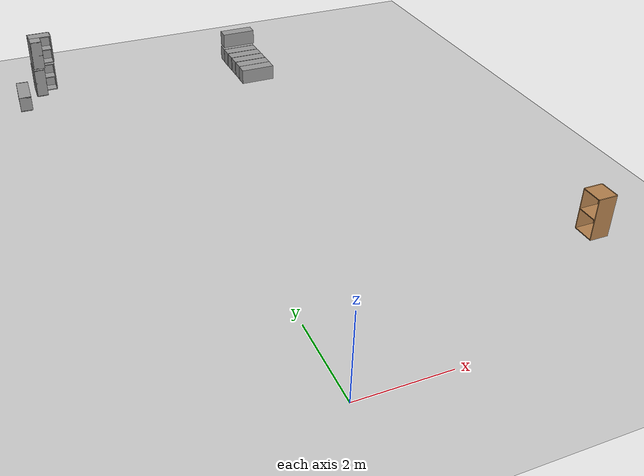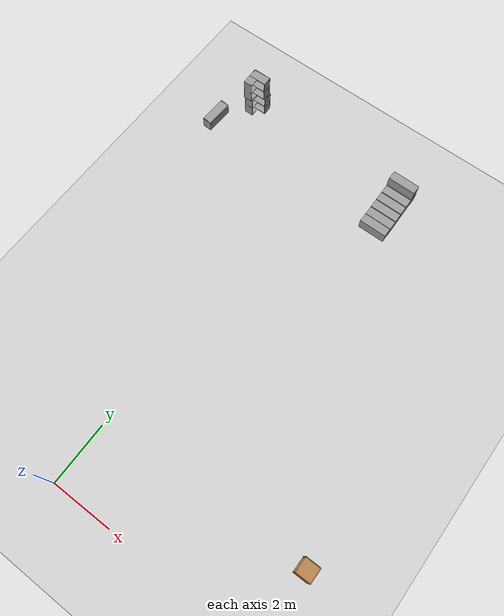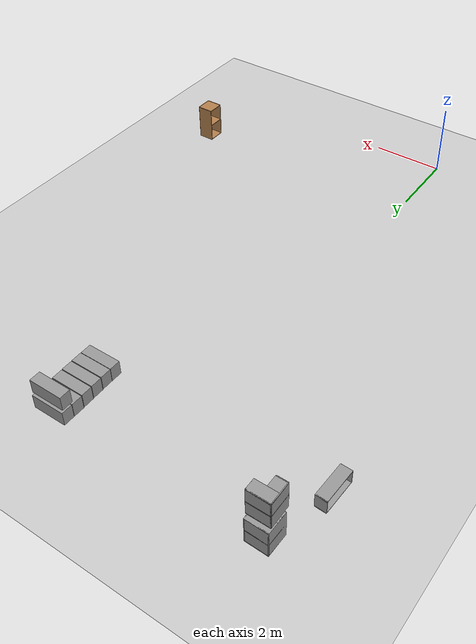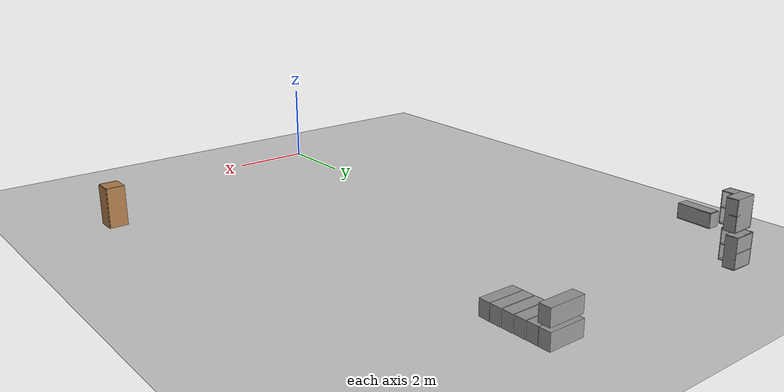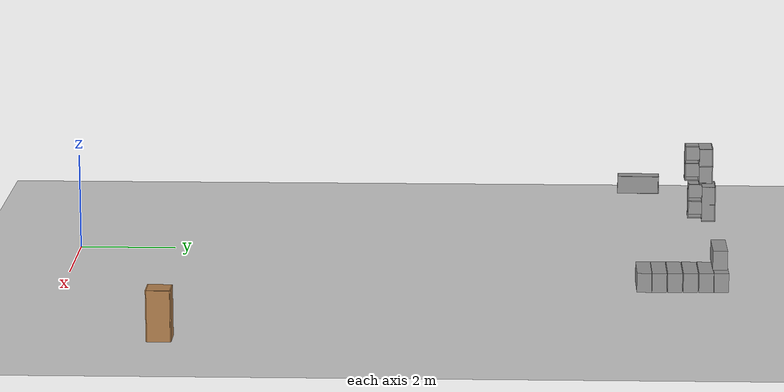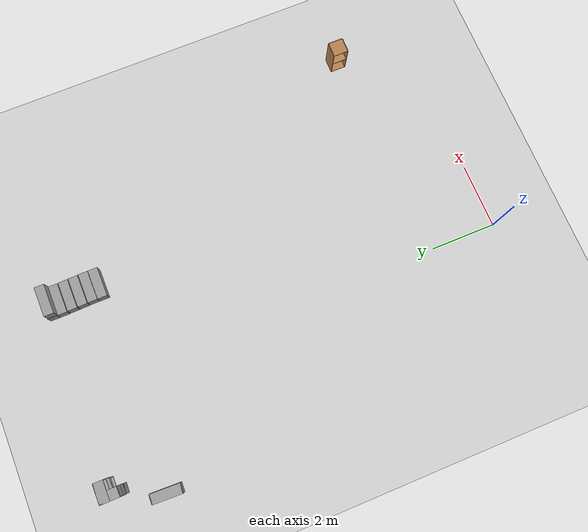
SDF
<sdf version="1.6">
 <world name="default">
  <model name="Box_36x15W">
   <link name="Wall">
    <pose>0 0 0.1985 0 -0 0</pose>
    <inertial>
     <mass>5</mass>
     <inertia><ixx>0.1022</ixx><iyy>0.4107</iyy><izz>0.3815</izz><ixy>0</ixy><ixz>0</ixz><iyz>0</iyz></inertia>
    </inertial>
    <collision name="Wall_Collision"><geometry><box><size>0.91 0.296 0.397</size></box></geometry></collision>
    <visual name="Wall_Visual">
     <geometry><box><size>0.91 0.296 0.397</size></box></geometry>
     <material>
      <script><uri>file://media/materials/scripts/gazebo.material</uri><name>Gazebo/Grey</name></script>
      <ambient>1 1 1 1</ambient>
     </material>
    </visual>
   </link>
   <static>1</static>
   <pose>2.73505 13.3468 0 0 -0 0</pose>
  </model>
  <model name="Box_36x15W_0">
   <link name="Wall">
    <pose>0 0 0.1985 0 -0 0</pose>
    <inertial>
     <mass>5</mass>
     <inertia><ixx>0.1022</ixx><iyy>0.4107</iyy><izz>0.3815</izz><ixy>0</ixy><ixz>0</ixz><iyz>0</iyz></inertia>
    </inertial>
    <collision name="Wall_Collision"><geometry><box><size>0.91 0.296 0.397</size></box></geometry></collision>
    <visual name="Wall_Visual">
     <geometry><box><size>0.91 0.296 0.397</size></box></geometry>
     <material>
      <script><uri>file://media/materials/scripts/gazebo.material</uri><name>Gazebo/Grey</name></script>
      <ambient>1 1 1 1</ambient>
     </material>
    </visual>
   </link>
   <static>1</static>
   <pose>2.73379 13.0426 0 0 -0 0</pose>
  </model>
  <model name="Box_36x15W_1">
   <link name="Wall">
    <pose>0 0 0.1985 0 -0 0</pose>
    <inertial>
     <mass>5</mass>
     <inertia><ixx>0.1022</ixx><iyy>0.4107</iyy><izz>0.3815</izz><ixy>0</ixy><ixz>0</ixz><iyz>0</iyz></inertia>
    </inertial>
    <collision name="Wall_Collision"><geometry><box><size>0.91 0.296 0.397</size></box></geometry></collision>
    <visual name="Wall_Visual">
     <geometry><box><size>0.91 0.296 0.397</size></box></geometry>
     <material>
      <script><uri>file://media/materials/scripts/gazebo.material</uri><name>Gazebo/Grey</name></script>
      <ambient>1 1 1 1</ambient>
     </material>
    </visual>
   </link>
   <static>1</static>
   <pose>2.74071 12.727 0 0 -0 0</pose>
  </model>
  <model name="Box_36x15W_2">
   <link name="Wall">
    <pose>0 0 0.1985 0 -0 0</pose>
    <inertial>
     <mass>5</mass>
     <inertia><ixx>0.1022</ixx><iyy>0.4107</iyy><izz>0.3815</izz><ixy>0</ixy><ixz>0</ixz><iyz>0</iyz></inertia>
    </inertial>
    <collision name="Wall_Collision"><geometry><box><size>0.91 0.296 0.397</size></box></geometry></collision>
    <visual name="Wall_Visual">
     <geometry><box><size>0.91 0.296 0.397</size></box></geometry>
     <material>
      <script><uri>file://media/materials/scripts/gazebo.material</uri><name>Gazebo/Grey</name></script>
      <ambient>1 1 1 1</ambient>
     </material>
    </visual>
   </link>
   <static>1</static>
   <pose>2.74763 12.4113 0 0 -0 0</pose>
  </model>
  <model name="Box_36x15W_3">
   <link name="Wall">
    <pose>0 0 0.1985 0 -0 0</pose>
    <inertial>
     <mass>5</mass>
     <inertia><ixx>0.1022</ixx><iyy>0.4107</iyy><izz>0.3815</izz><ixy>0</ixy><ixz>0</ixz><iyz>0</iyz></inertia>
    </inertial>
    <collision name="Wall_Collision"><geometry><box><size>0.91 0.296 0.397</size></box></geometry></collision>
    <visual name="Wall_Visual">
     <geometry><box><size>0.91 0.296 0.397</size></box></geometry>
     <material>
      <script><uri>file://media/materials/scripts/gazebo.material</uri><name>Gazebo/Grey</name></script>
      <ambient>1 1 1 1</ambient>
     </material>
    </visual>
   </link>
   <static>1</static>
   <pose>2.75455 12.0956 0 0 -0 0</pose>
  </model>
  <model name="Box_36x15W_4">
   <link name="Wall">
    <pose>0 0 0.1985 0 -0 0</pose>
    <inertial>
     <mass>5</mass>
     <inertia><ixx>0.1022</ixx><iyy>0.4107</iyy><izz>0.3815</izz><ixy>0</ixy><ixz>0</ixz><iyz>0</iyz></inertia>
    </inertial>
    <collision name="Wall_Collision"><geometry><box><size>0.91 0.296 0.397</size></box></geometry></collision>
    <visual name="Wall_Visual">
     <geometry><box><size>0.91 0.296 0.397</size></box></geometry>
     <material>
      <script><uri>file://media/materials/scripts/gazebo.material</uri><name>Gazebo/Grey</name></script>
      <ambient>1 1 1 1</ambient>
     </material>
    </visual>
   </link>
   <static>1</static>
   <pose>2.75329 11.7915 0 0 -0 0</pose>
  </model>
  <model name="Box_36x15W_5">
   <link name="Wall">
    <pose>0 0 0.1985 0 -0 0</pose>
    <inertial>
     <mass>5</mass>
     <inertia><ixx>0.1022</ixx><iyy>0.4107</iyy><izz>0.3815</izz><ixy>0</ixy><ixz>0</ixz><iyz>0</iyz></inertia>
    </inertial>
    <collision name="Wall_Collision"><geometry><box><size>0.91 0.296 0.397</size></box></geometry></collision>
    <visual name="Wall_Visual">
     <geometry><box><size>0.91 0.296 0.397</size></box></geometry>
     <material>
      <script><uri>file://media/materials/scripts/gazebo.material</uri><name>Gazebo/Grey</name></script>
      <ambient>1 1 1 1</ambient>
     </material>
    </visual>
   </link>
   <static>1</static>
   <pose>2.73178 13.3121 0.471526 0 -0 0</pose>
  </model>
  <model name="Wall_Cabinet_Coin_24x30W">
   <link name="Wall_10">
    <pose>0.286 -0.148 0.384 0 -0 0</pose>
    <inertial>
     <mass>2.1259</mass>
     <inertia><ixx>0.0158</ixx><iyy>0.1202</iyy><izz>0.1046</izz><ixy>0</ixy><ixz>0</ixz><iyz>0</iyz></inertia>
    </inertial>
    <collision name="Wall_10_Collision"><geometry><box><size>0.02 0.296 0.768</size></box></geometry></collision>
    <visual name="Wall_10_Visual">
     <geometry><box><size>0.02 0.296 0.768</size></box></geometry>
     <material>
      <script><uri>file://media/materials/scripts/gazebo.material</uri><name>Gazebo/Grey</name></script>
      <ambient>1 1 1 1</ambient>
     </material>
    </visual>
   </link>
   <joint name="10_16" type="fixed">
    <pose>0 0 -0.374 0 -0 0</pose>
    <parent>Wall_16</parent>
    <child>Wall_10</child>
    <axis>
     <xyz>1 0 0</xyz>
     <use_parent_model_frame>0</use_parent_model_frame>
     <limit><lower>-1e+16</lower><upper>1e+16</upper></limit>
    </axis>
   </joint>
   <joint name="10_14" type="fixed">
    <parent>Wall_14</parent>
    <child>Wall_10</child>
    <axis>
     <xyz>1 0 0</xyz>
     <use_parent_model_frame>0</use_parent_model_frame>
     <limit><lower>-1e+16</lower><upper>1e+16</upper></limit>
    </axis>
   </joint>
   <joint name="10_12" type="fixed">
    <pose>0 0 0.374 0 -0 0</pose>
    <parent>Wall_12</parent>
    <child>Wall_10</child>
    <axis>
     <xyz>1 0 0</xyz>
     <use_parent_model_frame>0</use_parent_model_frame>
     <limit><lower>-1e+16</lower><upper>1e+16</upper></limit>
    </axis>
   </joint>
   <joint name="10_29" type="fixed">
    <pose>0 -0.148 0 0 -0 0</pose>
    <parent>Wall_29</parent>
    <child>Wall_10</child>
    <axis>
     <xyz>1 0 0</xyz>
     <use_parent_model_frame>0</use_parent_model_frame>
     <limit><lower>-1e+16</lower><upper>1e+16</upper></limit>
    </axis>
   </joint>
   <link name="Wall_12">
    <pose>0.148 -0.148 0.758 0 -0 0</pose>
    <inertial>
     <mass>0.8802</mass>
     <inertia><ixx>0.0065</ixx><iyy>0.0139</iyy><izz>0.0074</izz><ixy>0</ixy><ixz>0</ixz><iyz>0</iyz></inertia>
    </inertial>
    <collision name="Wall_12_Collision"><geometry><box><size>0.296 0.296 0.02</size></box></geometry></collision>
    <visual name="Wall_12_Visual">
     <geometry><box><size>0.296 0.296 0.02</size></box></geometry>
     <material>
      <script><uri>file://media/materials/scripts/gazebo.material</uri><name>Gazebo/Grey</name></script>
      <ambient>1 1 1 1</ambient>
     </material>
    </visual>
   </link>
   <joint name="12_29" type="fixed">
    <pose>0 -0.148 0 0 -0 0</pose>
    <parent>Wall_29</parent>
    <child>Wall_12</child>
    <axis>
     <xyz>0 0 1</xyz>
     <use_parent_model_frame>0</use_parent_model_frame>
     <limit><lower>-1e+16</lower><upper>1e+16</upper></limit>
    </axis>
   </joint>
   <link name="Wall_14">
    <pose>0.148 -0.148 0.384 0 -0 0</pose>
    <inertial>
     <mass>0.8802</mass>
     <inertia><ixx>0.0065</ixx><iyy>0.0139</iyy><izz>0.0074</izz><ixy>0</ixy><ixz>0</ixz><iyz>0</iyz></inertia>
    </inertial>
    <collision name="Wall_14_Collision"><geometry><box><size>0.296 0.296 0.02</size></box></geometry></collision>
    <visual name="Wall_14_Visual">
     <geometry><box><size>0.296 0.296 0.02</size></box></geometry>
     <material>
      <script><uri>file://media/materials/scripts/gazebo.material</uri><name>Gazebo/Grey</name></script>
      <ambient>1 1 1 1</ambient>
     </material>
    </visual>
   </link>
   <joint name="14_29" type="fixed">
    <pose>0 -0.148 0 0 -0 0</pose>
    <parent>Wall_29</parent>
    <child>Wall_14</child>
    <axis>
     <xyz>0 1 0</xyz>
     <use_parent_model_frame>0</use_parent_model_frame>
     <limit><lower>-1e+16</lower><upper>1e+16</upper></limit>
    </axis>
   </joint>
   <link name="Wall_16">
    <pose>0.148 -0.148 0.01 0 -0 0</pose>
    <inertial>
     <mass>0.8802</mass>
     <inertia><ixx>0.0065</ixx><iyy>0.0139</iyy><izz>0.0074</izz><ixy>0</ixy><ixz>0</ixz><iyz>0</iyz></inertia>
    </inertial>
    <collision name="Wall_16_Collision"><geometry><box><size>0.296 0.296 0.02</size></box></geometry></collision>
    <visual name="Wall_16_Visual">
     <geometry><box><size>0.296 0.296 0.02</size></box></geometry>
     <material>
      <script><uri>file://media/materials/scripts/gazebo.material</uri><name>Gazebo/Grey</name></script>
      <ambient>1 1 1 1</ambient>
     </material>
    </visual>
   </link>
   <joint name="16_29" type="fixed">
    <pose>0 -0.148 0 0 -0 0</pose>
    <parent>Wall_29</parent>
    <child>Wall_16</child>
    <axis>
     <xyz>0 1 0</xyz>
     <use_parent_model_frame>0</use_parent_model_frame>
     <limit><lower>-1e+16</lower><upper>1e+16</upper></limit>
    </axis>
   </joint>
   <link name="Wall_18">
    <pose>-0.148 0 0.01 0 -0 0</pose>
    <inertial>
     <mass>1.6525</mass>
     <inertia><ixx>0.0491</ixx><iyy>0.0613</iyy><izz>0.0123</izz><ixy>0</ixy><ixz>0</ixz><iyz>0</iyz></inertia>
    </inertial>
    <collision name="Wall_18_Collision"><geometry><box><size>0.296 0.592 0.02</size></box></geometry></collision>
    <visual name="Wall_18_Visual">
     <geometry><box><size>0.296 0.592 0.02</size></box></geometry>
     <material>
      <script><uri>file://media/materials/scripts/gazebo.material</uri><name>Gazebo/Grey</name></script>
      <ambient>1 1 1 1</ambient>
     </material>
    </visual>
   </link>
   <joint name="18_16" type="fixed">
    <pose>0.148 -0.148 0 0 -0 0</pose>
    <parent>Wall_16</parent>
    <child>Wall_18</child>
    <axis>
     <xyz>1 0 0</xyz>
     <use_parent_model_frame>0</use_parent_model_frame>
     <limit><lower>-1e+16</lower><upper>1e+16</upper></limit>
    </axis>
   </joint>
   <joint name="18_29" type="fixed">
    <pose>0 -0.296 0 0 -0 0</pose>
    <parent>Wall_29</parent>
    <child>Wall_18</child>
    <axis>
     <xyz>0 1 0</xyz>
     <use_parent_model_frame>0</use_parent_model_frame>
     <limit><lower>-1e+16</lower><upper>1e+16</upper></limit>
    </axis>
   </joint>
   <joint name="18_27" type="fixed">
    <pose>-0.148 0 0 0 -0 0</pose>
    <parent>Wall_27</parent>
    <child>Wall_18</child>
    <axis>
     <xyz>1 0 0</xyz>
     <use_parent_model_frame>0</use_parent_model_frame>
     <limit><lower>-1e+16</lower><upper>1e+16</upper></limit>
    </axis>
   </joint>
   <joint name="18_30" type="fixed">
    <pose>0 0.296 0 0 -0 0</pose>
    <parent>Wall_30</parent>
    <child>Wall_18</child>
    <axis>
     <xyz>0 1 0</xyz>
     <use_parent_model_frame>0</use_parent_model_frame>
     <limit><lower>-1e+16</lower><upper>1e+16</upper></limit>
    </axis>
   </joint>
   <link name="Wall_20">
    <pose>-0.148 0 0.384 0 -0 0</pose>
    <inertial>
     <mass>1.6525</mass>
     <inertia><ixx>0.0491</ixx><iyy>0.0613</iyy><izz>0.0123</izz><ixy>0</ixy><ixz>0</ixz><iyz>0</iyz></inertia>
    </inertial>
    <collision name="Wall_20_Collision"><geometry><box><size>0.296 0.592 0.02</size></box></geometry></collision>
    <visual name="Wall_20_Visual">
     <geometry><box><size>0.296 0.592 0.02</size></box></geometry>
     <material>
      <script><uri>file://media/materials/scripts/gazebo.material</uri><name>Gazebo/Grey</name></script>
      <ambient>1 1 1 1</ambient>
     </material>
    </visual>
   </link>
   <joint name="20_14" type="fixed">
    <pose>0.148 -0.148 0 0 -0 0</pose>
    <parent>Wall_14</parent>
    <child>Wall_20</child>
    <axis>
     <xyz>1 0 0</xyz>
     <use_parent_model_frame>0</use_parent_model_frame>
     <limit><lower>-1e+16</lower><upper>1e+16</upper></limit>
    </axis>
   </joint>
   <joint name="20_29" type="fixed">
    <pose>0 -0.296 0 0 -0 0</pose>
    <parent>Wall_29</parent>
    <child>Wall_20</child>
    <axis>
     <xyz>0 1 0</xyz>
     <use_parent_model_frame>0</use_parent_model_frame>
     <limit><lower>-1e+16</lower><upper>1e+16</upper></limit>
    </axis>
   </joint>
   <joint name="20_27" type="fixed">
    <pose>-0.148 0 0 0 -0 0</pose>
    <parent>Wall_27</parent>
    <child>Wall_20</child>
    <axis>
     <xyz>1 0 0</xyz>
     <use_parent_model_frame>0</use_parent_model_frame>
     <limit><lower>-1e+16</lower><upper>1e+16</upper></limit>
    </axis>
   </joint>
   <joint name="20_30" type="fixed">
    <pose>0 0.296 0 0 -0 0</pose>
    <parent>Wall_30</parent>
    <child>Wall_20</child>
    <axis>
     <xyz>0 1 0</xyz>
     <use_parent_model_frame>0</use_parent_model_frame>
     <limit><lower>-1e+16</lower><upper>1e+16</upper></limit>
    </axis>
   </joint>
   <link name="Wall_22">
    <pose>-0.148 0 0.758 0 -0 0</pose>
    <inertial>
     <mass>1.6525</mass>
     <inertia><ixx>0.0491</ixx><iyy>0.0613</iyy><izz>0.0123</izz><ixy>0</ixy><ixz>0</ixz><iyz>0</iyz></inertia>
    </inertial>
    <collision name="Wall_22_Collision"><geometry><box><size>0.296 0.592 0.02</size></box></geometry></collision>
    <visual name="Wall_22_Visual">
     <geometry><box><size>0.296 0.592 0.02</size></box></geometry>
     <material>
      <script><uri>file://media/materials/scripts/gazebo.material</uri><name>Gazebo/Grey</name></script>
      <ambient>1 1 1 1</ambient>
     </material>
    </visual>
   </link>
   <joint name="22_12" type="fixed">
    <pose>0.148 -0.148 0 0 -0 0</pose>
    <parent>Wall_12</parent>
    <child>Wall_22</child>
    <axis>
     <xyz>1 0 0</xyz>
     <use_parent_model_frame>0</use_parent_model_frame>
     <limit><lower>-1e+16</lower><upper>1e+16</upper></limit>
    </axis>
   </joint>
   <joint name="22_29" type="fixed">
    <pose>0 -0.296 0 0 -0 0</pose>
    <parent>Wall_29</parent>
    <child>Wall_22</child>
    <axis>
     <xyz>0 1 0</xyz>
     <use_parent_model_frame>0</use_parent_model_frame>
     <limit><lower>-1e+16</lower><upper>1e+16</upper></limit>
    </axis>
   </joint>
   <joint name="22_27" type="fixed">
    <pose>-0.148 0 0 0 -0 0</pose>
    <parent>Wall_27</parent>
    <child>Wall_22</child>
    <axis>
     <xyz>1 0 0</xyz>
     <use_parent_model_frame>0</use_parent_model_frame>
     <limit><lower>-1e+16</lower><upper>1e+16</upper></limit>
    </axis>
   </joint>
   <joint name="22_30" type="fixed">
    <pose>0 0.296 0 0 -0 0</pose>
    <parent>Wall_30</parent>
    <child>Wall_22</child>
    <axis>
     <xyz>0 1 0</xyz>
     <use_parent_model_frame>0</use_parent_model_frame>
     <limit><lower>-1e+16</lower><upper>1e+16</upper></limit>
    </axis>
   </joint>
   <link name="Wall_27">
    <pose>-0.286 0 0.384 0 -0 0</pose>
    <inertial>
     <mass>4.2589</mass>
     <inertia><ixx>0.1266</ixx><iyy>0.3358</iyy><izz>0.2095</izz><ixy>0</ixy><ixz>0</ixz><iyz>0</iyz></inertia>
    </inertial>
    <collision name="Wall_27_Collision"><geometry><box><size>0.02 0.592 0.768</size></box></geometry></collision>
    <visual name="Wall_27_Visual">
     <geometry><box><size>0.02 0.592 0.768</size></box></geometry>
     <material>
      <script><uri>file://media/materials/scripts/gazebo.material</uri><name>Gazebo/Grey</name></script>
      <ambient>1 1 1 1</ambient>
     </material>
    </visual>
   </link>
   <joint name="27_30" type="fixed">
    <pose>0 0.296 0 0 -0 0</pose>
    <parent>Wall_30</parent>
    <child>Wall_27</child>
    <axis>
     <xyz>0 1 0</xyz>
     <use_parent_model_frame>0</use_parent_model_frame>
     <limit><lower>-1e+16</lower><upper>1e+16</upper></limit>
    </axis>
   </joint>
   <link name="Wall_29">
    <pose>0 -0.286 0.384 0 -0 0</pose>
    <inertial>
     <mass>4.3176</mass>
     <inertia><ixx>0.134</ixx><iyy>0.2091</iyy><izz>0.3428</izz><ixy>0</ixy><ixz>0</ixz><iyz>0</iyz></inertia>
    </inertial>
    <collision name="Wall_29_Collision"><geometry><box><size>0.592 0.02 0.768</size></box></geometry></collision>
    <visual name="Wall_29_Visual">
     <geometry><box><size>0.592 0.02 0.768</size></box></geometry>
     <material>
      <script><uri>file://media/materials/scripts/gazebo.material</uri><name>Gazebo/Grey</name></script>
      <ambient>1 1 1 1</ambient>
     </material>
    </visual>
   </link>
   <link name="Wall_30">
    <pose>-0.148 0.286 0.384 0 -0 0</pose>
    <inertial>
     <mass>2.1093</mass>
     <inertia><ixx>0.1021</ixx><iyy>0.0157</iyy><izz>0.1177</izz><ixy>0</ixy><ixz>0</ixz><iyz>0</iyz></inertia>
    </inertial>
    <collision name="Wall_30_Collision"><geometry><box><size>0.296 0.02 0.768</size></box></geometry></collision>
    <visual name="Wall_30_Visual">
     <geometry><box><size>0.296 0.02 0.768</size></box></geometry>
     <material>
      <script><uri>file://media/materials/scripts/gazebo.material</uri><name>Gazebo/Grey</name></script>
      <ambient>1 1 1 1</ambient>
     </material>
    </visual>
   </link>
   <static>1</static>
   <pose>-2.88429 13.1884 0.84864 0 0 -1.56746</pose>
  </model>
  <model name="Wall_Cabinet_Coin_24x30W_0">
   <link name="Wall_10">
    <pose>0.286 -0.148 0.384 0 -0 0</pose>
    <inertial>
     <mass>2.1259</mass>
     <inertia><ixx>0.0158</ixx><iyy>0.1202</iyy><izz>0.1046</izz><ixy>0</ixy><ixz>0</ixz><iyz>0</iyz></inertia>
    </inertial>
    <collision name="Wall_10_Collision"><geometry><box><size>0.02 0.296 0.768</size></box></geometry></collision>
    <visual name="Wall_10_Visual">
     <geometry><box><size>0.02 0.296 0.768</size></box></geometry>
     <material>
      <script><uri>file://media/materials/scripts/gazebo.material</uri><name>Gazebo/Grey</name></script>
      <ambient>1 1 1 1</ambient>
     </material>
    </visual>
   </link>
   <joint name="10_16" type="fixed">
    <pose>0 0 -0.374 0 -0 0</pose>
    <parent>Wall_16</parent>
    <child>Wall_10</child>
    <axis>
     <xyz>1 0 0</xyz>
     <use_parent_model_frame>0</use_parent_model_frame>
     <limit><lower>-1e+16</lower><upper>1e+16</upper></limit>
    </axis>
   </joint>
   <joint name="10_14" type="fixed">
    <parent>Wall_14</parent>
    <child>Wall_10</child>
    <axis>
     <xyz>1 0 0</xyz>
     <use_parent_model_frame>0</use_parent_model_frame>
     <limit><lower>-1e+16</lower><upper>1e+16</upper></limit>
    </axis>
   </joint>
   <joint name="10_12" type="fixed">
    <pose>0 0 0.374 0 -0 0</pose>
    <parent>Wall_12</parent>
    <child>Wall_10</child>
    <axis>
     <xyz>1 0 0</xyz>
     <use_parent_model_frame>0</use_parent_model_frame>
     <limit><lower>-1e+16</lower><upper>1e+16</upper></limit>
    </axis>
   </joint>
   <joint name="10_29" type="fixed">
    <pose>0 -0.148 0 0 -0 0</pose>
    <parent>Wall_29</parent>
    <child>Wall_10</child>
    <axis>
     <xyz>1 0 0</xyz>
     <use_parent_model_frame>0</use_parent_model_frame>
     <limit><lower>-1e+16</lower><upper>1e+16</upper></limit>
    </axis>
   </joint>
   <link name="Wall_12">
    <pose>0.148 -0.148 0.758 0 -0 0</pose>
    <inertial>
     <mass>0.8802</mass>
     <inertia><ixx>0.0065</ixx><iyy>0.0139</iyy><izz>0.0074</izz><ixy>0</ixy><ixz>0</ixz><iyz>0</iyz></inertia>
    </inertial>
    <collision name="Wall_12_Collision"><geometry><box><size>0.296 0.296 0.02</size></box></geometry></collision>
    <visual name="Wall_12_Visual">
     <geometry><box><size>0.296 0.296 0.02</size></box></geometry>
     <material>
      <script><uri>file://media/materials/scripts/gazebo.material</uri><name>Gazebo/Grey</name></script>
      <ambient>1 1 1 1</ambient>
     </material>
    </visual>
   </link>
   <joint name="12_29" type="fixed">
    <pose>0 -0.148 0 0 -0 0</pose>
    <parent>Wall_29</parent>
    <child>Wall_12</child>
    <axis>
     <xyz>0 0 1</xyz>
     <use_parent_model_frame>0</use_parent_model_frame>
     <limit><lower>-1e+16</lower><upper>1e+16</upper></limit>
    </axis>
   </joint>
   <link name="Wall_14">
    <pose>0.148 -0.148 0.384 0 -0 0</pose>
    <inertial>
     <mass>0.8802</mass>
     <inertia><ixx>0.0065</ixx><iyy>0.0139</iyy><izz>0.0074</izz><ixy>0</ixy><ixz>0</ixz><iyz>0</iyz></inertia>
    </inertial>
    <collision name="Wall_14_Collision"><geometry><box><size>0.296 0.296 0.02</size></box></geometry></collision>
    <visual name="Wall_14_Visual">
     <geometry><box><size>0.296 0.296 0.02</size></box></geometry>
     <material>
      <script><uri>file://media/materials/scripts/gazebo.material</uri><name>Gazebo/Grey</name></script>
      <ambient>1 1 1 1</ambient>
     </material>
    </visual>
   </link>
   <joint name="14_29" type="fixed">
    <pose>0 -0.148 0 0 -0 0</pose>
    <parent>Wall_29</parent>
    <child>Wall_14</child>
    <axis>
     <xyz>0 1 0</xyz>
     <use_parent_model_frame>0</use_parent_model_frame>
     <limit><lower>-1e+16</lower><upper>1e+16</upper></limit>
    </axis>
   </joint>
   <link name="Wall_16">
    <pose>0.148 -0.148 0.01 0 -0 0</pose>
    <inertial>
     <mass>0.8802</mass>
     <inertia><ixx>0.0065</ixx><iyy>0.0139</iyy><izz>0.0074</izz><ixy>0</ixy><ixz>0</ixz><iyz>0</iyz></inertia>
    </inertial>
    <collision name="Wall_16_Collision"><geometry><box><size>0.296 0.296 0.02</size></box></geometry></collision>
    <visual name="Wall_16_Visual">
     <geometry><box><size>0.296 0.296 0.02</size></box></geometry>
     <material>
      <script><uri>file://media/materials/scripts/gazebo.material</uri><name>Gazebo/Grey</name></script>
      <ambient>1 1 1 1</ambient>
     </material>
    </visual>
   </link>
   <joint name="16_29" type="fixed">
    <pose>0 -0.148 0 0 -0 0</pose>
    <parent>Wall_29</parent>
    <child>Wall_16</child>
    <axis>
     <xyz>0 1 0</xyz>
     <use_parent_model_frame>0</use_parent_model_frame>
     <limit><lower>-1e+16</lower><upper>1e+16</upper></limit>
    </axis>
   </joint>
   <link name="Wall_18">
    <pose>-0.148 0 0.01 0 -0 0</pose>
    <inertial>
     <mass>1.6525</mass>
     <inertia><ixx>0.0491</ixx><iyy>0.0613</iyy><izz>0.0123</izz><ixy>0</ixy><ixz>0</ixz><iyz>0</iyz></inertia>
    </inertial>
    <collision name="Wall_18_Collision"><geometry><box><size>0.296 0.592 0.02</size></box></geometry></collision>
    <visual name="Wall_18_Visual">
     <geometry><box><size>0.296 0.592 0.02</size></box></geometry>
     <material>
      <script><uri>file://media/materials/scripts/gazebo.material</uri><name>Gazebo/Grey</name></script>
      <ambient>1 1 1 1</ambient>
     </material>
    </visual>
   </link>
   <joint name="18_16" type="fixed">
    <pose>0.148 -0.148 0 0 -0 0</pose>
    <parent>Wall_16</parent>
    <child>Wall_18</child>
    <axis>
     <xyz>1 0 0</xyz>
     <use_parent_model_frame>0</use_parent_model_frame>
     <limit><lower>-1e+16</lower><upper>1e+16</upper></limit>
    </axis>
   </joint>
   <joint name="18_29" type="fixed">
    <pose>0 -0.296 0 0 -0 0</pose>
    <parent>Wall_29</parent>
    <child>Wall_18</child>
    <axis>
     <xyz>0 1 0</xyz>
     <use_parent_model_frame>0</use_parent_model_frame>
     <limit><lower>-1e+16</lower><upper>1e+16</upper></limit>
    </axis>
   </joint>
   <joint name="18_27" type="fixed">
    <pose>-0.148 0 0 0 -0 0</pose>
    <parent>Wall_27</parent>
    <child>Wall_18</child>
    <axis>
     <xyz>1 0 0</xyz>
     <use_parent_model_frame>0</use_parent_model_frame>
     <limit><lower>-1e+16</lower><upper>1e+16</upper></limit>
    </axis>
   </joint>
   <joint name="18_30" type="fixed">
    <pose>0 0.296 0 0 -0 0</pose>
    <parent>Wall_30</parent>
    <child>Wall_18</child>
    <axis>
     <xyz>0 1 0</xyz>
     <use_parent_model_frame>0</use_parent_model_frame>
     <limit><lower>-1e+16</lower><upper>1e+16</upper></limit>
    </axis>
   </joint>
   <link name="Wall_20">
    <pose>-0.148 0 0.384 0 -0 0</pose>
    <inertial>
     <mass>1.6525</mass>
     <inertia><ixx>0.0491</ixx><iyy>0.0613</iyy><izz>0.0123</izz><ixy>0</ixy><ixz>0</ixz><iyz>0</iyz></inertia>
    </inertial>
    <collision name="Wall_20_Collision"><geometry><box><size>0.296 0.592 0.02</size></box></geometry></collision>
    <visual name="Wall_20_Visual">
     <geometry><box><size>0.296 0.592 0.02</size></box></geometry>
     <material>
      <script><uri>file://media/materials/scripts/gazebo.material</uri><name>Gazebo/Grey</name></script>
      <ambient>1 1 1 1</ambient>
     </material>
    </visual>
   </link>
   <joint name="20_14" type="fixed">
    <pose>0.148 -0.148 0 0 -0 0</pose>
    <parent>Wall_14</parent>
    <child>Wall_20</child>
    <axis>
     <xyz>1 0 0</xyz>
     <use_parent_model_frame>0</use_parent_model_frame>
     <limit><lower>-1e+16</lower><upper>1e+16</upper></limit>
    </axis>
   </joint>
   <joint name="20_29" type="fixed">
    <pose>0 -0.296 0 0 -0 0</pose>
    <parent>Wall_29</parent>
    <child>Wall_20</child>
    <axis>
     <xyz>0 1 0</xyz>
     <use_parent_model_frame>0</use_parent_model_frame>
     <limit><lower>-1e+16</lower><upper>1e+16</upper></limit>
    </axis>
   </joint>
   <joint name="20_27" type="fixed">
    <pose>-0.148 0 0 0 -0 0</pose>
    <parent>Wall_27</parent>
    <child>Wall_20</child>
    <axis>
     <xyz>1 0 0</xyz>
     <use_parent_model_frame>0</use_parent_model_frame>
     <limit><lower>-1e+16</lower><upper>1e+16</upper></limit>
    </axis>
   </joint>
   <joint name="20_30" type="fixed">
    <pose>0 0.296 0 0 -0 0</pose>
    <parent>Wall_30</parent>
    <child>Wall_20</child>
    <axis>
     <xyz>0 1 0</xyz>
     <use_parent_model_frame>0</use_parent_model_frame>
     <limit><lower>-1e+16</lower><upper>1e+16</upper></limit>
    </axis>
   </joint>
   <link name="Wall_22">
    <pose>-0.148 0 0.758 0 -0 0</pose>
    <inertial>
     <mass>1.6525</mass>
     <inertia><ixx>0.0491</ixx><iyy>0.0613</iyy><izz>0.0123</izz><ixy>0</ixy><ixz>0</ixz><iyz>0</iyz></inertia>
    </inertial>
    <collision name="Wall_22_Collision"><geometry><box><size>0.296 0.592 0.02</size></box></geometry></collision>
    <visual name="Wall_22_Visual">
     <geometry><box><size>0.296 0.592 0.02</size></box></geometry>
     <material>
      <script><uri>file://media/materials/scripts/gazebo.material</uri><name>Gazebo/Grey</name></script>
      <ambient>1 1 1 1</ambient>
     </material>
    </visual>
   </link>
   <joint name="22_12" type="fixed">
    <pose>0.148 -0.148 0 0 -0 0</pose>
    <parent>Wall_12</parent>
    <child>Wall_22</child>
    <axis>
     <xyz>1 0 0</xyz>
     <use_parent_model_frame>0</use_parent_model_frame>
     <limit><lower>-1e+16</lower><upper>1e+16</upper></limit>
    </axis>
   </joint>
   <joint name="22_29" type="fixed">
    <pose>0 -0.296 0 0 -0 0</pose>
    <parent>Wall_29</parent>
    <child>Wall_22</child>
    <axis>
     <xyz>0 1 0</xyz>
     <use_parent_model_frame>0</use_parent_model_frame>
     <limit><lower>-1e+16</lower><upper>1e+16</upper></limit>
    </axis>
   </joint>
   <joint name="22_27" type="fixed">
    <pose>-0.148 0 0 0 -0 0</pose>
    <parent>Wall_27</parent>
    <child>Wall_22</child>
    <axis>
     <xyz>1 0 0</xyz>
     <use_parent_model_frame>0</use_parent_model_frame>
     <limit><lower>-1e+16</lower><upper>1e+16</upper></limit>
    </axis>
   </joint>
   <joint name="22_30" type="fixed">
    <pose>0 0.296 0 0 -0 0</pose>
    <parent>Wall_30</parent>
    <child>Wall_22</child>
    <axis>
     <xyz>0 1 0</xyz>
     <use_parent_model_frame>0</use_parent_model_frame>
     <limit><lower>-1e+16</lower><upper>1e+16</upper></limit>
    </axis>
   </joint>
   <link name="Wall_27">
    <pose>-0.286 0 0.384 0 -0 0</pose>
    <inertial>
     <mass>4.2589</mass>
     <inertia><ixx>0.1266</ixx><iyy>0.3358</iyy><izz>0.2095</izz><ixy>0</ixy><ixz>0</ixz><iyz>0</iyz></inertia>
    </inertial>
    <collision name="Wall_27_Collision"><geometry><box><size>0.02 0.592 0.768</size></box></geometry></collision>
    <visual name="Wall_27_Visual">
     <geometry><box><size>0.02 0.592 0.768</size></box></geometry>
     <material>
      <script><uri>file://media/materials/scripts/gazebo.material</uri><name>Gazebo/Grey</name></script>
      <ambient>1 1 1 1</ambient>
     </material>
    </visual>
   </link>
   <joint name="27_30" type="fixed">
    <pose>0 0.296 0 0 -0 0</pose>
    <parent>Wall_30</parent>
    <child>Wall_27</child>
    <axis>
     <xyz>0 1 0</xyz>
     <use_parent_model_frame>0</use_parent_model_frame>
     <limit><lower>-1e+16</lower><upper>1e+16</upper></limit>
    </axis>
   </joint>
   <link name="Wall_29">
    <pose>0 -0.286 0.384 0 -0 0</pose>
    <inertial>
     <mass>4.3176</mass>
     <inertia><ixx>0.134</ixx><iyy>0.2091</iyy><izz>0.3428</izz><ixy>0</ixy><ixz>0</ixz><iyz>0</iyz></inertia>
    </inertial>
    <collision name="Wall_29_Collision"><geometry><box><size>0.592 0.02 0.768</size></box></geometry></collision>
    <visual name="Wall_29_Visual">
     <geometry><box><size>0.592 0.02 0.768</size></box></geometry>
     <material>
      <script><uri>file://media/materials/scripts/gazebo.material</uri><name>Gazebo/Grey</name></script>
      <ambient>1 1 1 1</ambient>
     </material>
    </visual>
   </link>
   <link name="Wall_30">
    <pose>-0.148 0.286 0.384 0 -0 0</pose>
    <inertial>
     <mass>2.1093</mass>
     <inertia><ixx>0.1021</ixx><iyy>0.0157</iyy><izz>0.1177</izz><ixy>0</ixy><ixz>0</ixz><iyz>0</iyz></inertia>
    </inertial>
    <collision name="Wall_30_Collision"><geometry><box><size>0.296 0.02 0.768</size></box></geometry></collision>
    <visual name="Wall_30_Visual">
     <geometry><box><size>0.296 0.02 0.768</size></box></geometry>
     <material>
      <script><uri>file://media/materials/scripts/gazebo.material</uri><name>Gazebo/Grey</name></script>
      <ambient>1 1 1 1</ambient>
     </material>
    </visual>
   </link>
   <static>1</static>
   <pose>-2.89344 13.2666 0 0 0 -1.58641</pose>
  </model>
  <model name="Wall_Cabinet_36x15W_2">
   <link name="Wall_0">
    <pose>0 0 0.01 0 -0 0</pose>
    <inertial>
     <mass>1.9796</mass>
     <inertia><ixx>0.0145</ixx><iyy>0.1511</iyy><izz>0.1367</izz><ixy>0</ixy><ixz>0</ixz><iyz>0</iyz></inertia>
    </inertial>
    <collision name="Wall_0_Collision"><geometry><box><size>0.91 0.296 0.02</size></box></geometry></collision>
    <visual name="Wall_0_Visual">
     <geometry><box><size>0.91 0.296 0.02</size></box></geometry>
     <material>
      <script><uri>file://media/materials/scripts/gazebo.material</uri><name>Gazebo/Grey</name></script>
      <ambient>1 1 1 1</ambient>
     </material>
    </visual>
   </link>
   <joint name="0_2" type="fixed">
    <pose>-0.455 0 0 0 -0 0</pose>
    <parent>Wall_2</parent>
    <child>Wall_0</child>
    <axis>
     <xyz>0 0 1</xyz>
     <use_parent_model_frame>0</use_parent_model_frame>
     <limit><lower>-1e+16</lower><upper>1e+16</upper></limit>
    </axis>
   </joint>
   <joint name="0_4" type="fixed">
    <pose>0.455 0 0 0 -0 0</pose>
    <parent>Wall_4</parent>
    <child>Wall_0</child>
    <axis>
     <xyz>0 0 1</xyz>
     <use_parent_model_frame>0</use_parent_model_frame>
     <limit><lower>-1e+16</lower><upper>1e+16</upper></limit>
    </axis>
   </joint>
   <joint name="0_8" type="fixed">
    <pose>0 -0.148 0 0 -0 0</pose>
    <parent>Wall_8</parent>
    <child>Wall_0</child>
    <axis>
     <xyz>0 0 1</xyz>
     <use_parent_model_frame>0</use_parent_model_frame>
     <limit><lower>-1e+16</lower><upper>1e+16</upper></limit>
    </axis>
   </joint>
   <link name="Wall_2">
    <pose>-0.445 0 0.192 0 -0 0</pose>
    <inertial>
     <mass>0.8353</mass>
     <inertia><ixx>0.0061</ixx><iyy>0.0164</iyy><izz>0.0103</izz><ixy>0</ixy><ixz>0</ixz><iyz>0</iyz></inertia>
    </inertial>
    <collision name="Wall_2_Collision"><geometry><box><size>0.02 0.296 0.384</size></box></geometry></collision>
    <visual name="Wall_2_Visual">
     <geometry><box><size>0.02 0.296 0.384</size></box></geometry>
     <material>
      <script><uri>file://media/materials/scripts/gazebo.material</uri><name>Gazebo/Grey</name></script>
      <ambient>1 1 1 1</ambient>
     </material>
    </visual>
   </link>
   <link name="Wall_4">
    <pose>0.445 0 0.192 0 -0 0</pose>
    <inertial>
     <mass>0.8353</mass>
     <inertia><ixx>0.0061</ixx><iyy>0.0164</iyy><izz>0.0103</izz><ixy>0</ixy><ixz>0</ixz><iyz>0</iyz></inertia>
    </inertial>
    <collision name="Wall_4_Collision"><geometry><box><size>0.02 0.296 0.384</size></box></geometry></collision>
    <visual name="Wall_4_Visual">
     <geometry><box><size>0.02 0.296 0.384</size></box></geometry>
     <material>
      <script><uri>file://media/materials/scripts/gazebo.material</uri><name>Gazebo/Grey</name></script>
      <ambient>1 1 1 1</ambient>
     </material>
    </visual>
   </link>
   <link name="Wall_6">
    <pose>0 0 0.374 0 -0 0</pose>
    <inertial>
     <mass>1.9796</mass>
     <inertia><ixx>0.0145</ixx><iyy>0.1511</iyy><izz>0.1367</izz><ixy>0</ixy><ixz>0</ixz><iyz>0</iyz></inertia>
    </inertial>
    <collision name="Wall_6_Collision"><geometry><box><size>0.91 0.296 0.02</size></box></geometry></collision>
    <visual name="Wall_6_Visual">
     <geometry><box><size>0.91 0.296 0.02</size></box></geometry>
     <material>
      <script><uri>file://media/materials/scripts/gazebo.material</uri><name>Gazebo/Grey</name></script>
      <ambient>1 1 1 1</ambient>
     </material>
    </visual>
   </link>
   <joint name="6_2" type="fixed">
    <pose>-0.455 0 0 0 -0 0</pose>
    <parent>Wall_2</parent>
    <child>Wall_6</child>
    <axis>
     <xyz>0 0 1</xyz>
     <use_parent_model_frame>0</use_parent_model_frame>
     <limit><lower>-1e+16</lower><upper>1e+16</upper></limit>
    </axis>
   </joint>
   <joint name="6_4" type="fixed">
    <pose>0.455 0 0 0 -0 0</pose>
    <parent>Wall_4</parent>
    <child>Wall_6</child>
    <axis>
     <xyz>0 0 1</xyz>
     <use_parent_model_frame>0</use_parent_model_frame>
     <limit><lower>-1e+16</lower><upper>1e+16</upper></limit>
    </axis>
   </joint>
   <joint name="6_8" type="fixed">
    <pose>0 -0.148 0 0 -0 0</pose>
    <parent>Wall_8</parent>
    <child>Wall_6</child>
    <axis>
     <xyz>0 0 1</xyz>
     <use_parent_model_frame>0</use_parent_model_frame>
     <limit><lower>-1e+16</lower><upper>1e+16</upper></limit>
    </axis>
   </joint>
   <link name="Wall_8">
    <pose>0 -0.138 0.19 0 -0 0</pose>
    <inertial>
     <mass>2.5302</mass>
     <inertia><ixx>0.0305</ixx><iyy>0.1732</iyy><izz>0.2035</izz><ixy>0</ixy><ixz>0</ixz><iyz>0</iyz></inertia>
    </inertial>
    <collision name="Wall_8_Collision"><geometry><box><size>0.906 0.02 0.38</size></box></geometry></collision>
    <visual name="Wall_8_Visual">
     <geometry><box><size>0.906 0.02 0.38</size></box></geometry>
     <material>
      <script><uri>file://media/materials/scripts/gazebo.material</uri><name>Gazebo/Grey</name></script>
      <ambient>1 1 1 1</ambient>
     </material>
    </visual>
   </link>
   <joint name="8_2" type="fixed">
    <pose>-0.453 0 0 0 -0 0</pose>
    <parent>Wall_2</parent>
    <child>Wall_8</child>
    <axis>
     <xyz>0 1 0</xyz>
     <use_parent_model_frame>0</use_parent_model_frame>
     <limit><lower>-1e+16</lower><upper>1e+16</upper></limit>
    </axis>
   </joint>
   <joint name="8_4" type="fixed">
    <pose>0.453 0 0 0 -0 0</pose>
    <parent>Wall_4</parent>
    <child>Wall_8</child>
    <axis>
     <xyz>0 1 0</xyz>
     <use_parent_model_frame>0</use_parent_model_frame>
     <limit><lower>-1e+16</lower><upper>1e+16</upper></limit>
    </axis>
   </joint>
   <static>1</static>
   <pose>-3.59001 11.9077 0.410147 0 -0 1.53282</pose>
  </model>
  <model name="cabinet">
   <static>1</static>
   <link name="cabinet_bottom_plate">
    <inertial>
     <pose>0 0 -1 0 -0 0</pose>
     <inertia><ixx>2.05</ixx><ixy>0</ixy><ixz>0</ixz><iyy>2.05</iyy><iyz>0</iyz><izz>2.05</izz></inertia>
     <mass>25</mass>
    </inertial>
    <collision name="cabinet_bottom_plate_geom">
     <pose>0 0 0.01 0 -0 0</pose>
     <geometry><box><size>0.45 0.45 0.02</size></box></geometry>
    </collision>
    <visual name="cabinet_bottom_plate_geom_visual">
     <pose>0 0 0.01 0 -0 0</pose>
     <geometry><box><size>0.45 0.45 0.02</size></box></geometry>
     <material>
      <script><uri>file://media/materials/scripts/gazebo.material</uri><name>Gazebo/Wood</name></script>
     </material>
    </visual>
    <collision name="cabinet_bottom_plate_geom_cabinet_back_plate">
     <pose>0.235 0 0.51 0 -0 0</pose>
     <geometry><box><size>0.02 0.45 1.02</size></box></geometry>
    </collision>
    <visual name="cabinet_bottom_plate_geom_cabinet_back_plate_visual">
     <pose>0.235 0 0.51 0 -0 0</pose>
     <geometry><box><size>0.02 0.45 1.02</size></box></geometry>
     <material>
      <script><uri>file://media/materials/scripts/gazebo.material</uri><name>Gazebo/Wood</name></script>
     </material>
    </visual>
    <collision name="cabinet_bottom_plate_geom_cabinet_left_plate">
     <pose>0 0.235 0.51 0 -0 0</pose>
     <geometry><box><size>0.45 0.02 1.02</size></box></geometry>
    </collision>
    <visual name="cabinet_bottom_plate_geom_cabinet_left_plate_visual">
     <pose>0 0.235 0.51 0 -0 0</pose>
     <geometry><box><size>0.45 0.02 1.02</size></box></geometry>
     <material>
      <script><uri>file://media/materials/scripts/gazebo.material</uri><name>Gazebo/Wood</name></script>
     </material>
    </visual>
    <collision name="cabinet_bottom_plate_geom_cabinet_middle_plate">
     <pose>0 0 0.51 0 -0 0</pose>
     <geometry><box><size>0.45 0.45 0.02</size></box></geometry>
    </collision>
    <visual name="cabinet_bottom_plate_geom_cabinet_middle_plate_visual">
     <pose>0 0 0.51 0 -0 0</pose>
     <geometry><box><size>0.45 0.45 0.02</size></box></geometry>
     <material>
      <script><uri>file://media/materials/scripts/gazebo.material</uri><name>Gazebo/Wood</name></script>
     </material>
    </visual>
    <collision name="cabinet_bottom_plate_geom_cabinet_right_plate">
     <pose>0 -0.235 0.51 0 -0 0</pose>
     <geometry><box><size>0.45 0.02 1.02</size></box></geometry>
    </collision>
    <visual name="cabinet_bottom_plate_geom_cabinet_right_plate_visual">
     <pose>0 -0.235 0.51 0 -0 0</pose>
     <geometry><box><size>0.45 0.02 1.02</size></box></geometry>
     <material>
      <script><uri>file://media/materials/scripts/gazebo.material</uri><name>Gazebo/Wood</name></script>
     </material>
    </visual>
    <collision name="cabinet_bottom_plate_geom_cabinet_top_plate">
     <pose>0 0 1.01 0 -0 0</pose>
     <geometry><box><size>0.45 0.45 0.02</size></box></geometry>
    </collision>
    <visual name="cabinet_bottom_plate_geom_cabinet_top_plate_visual">
     <pose>0 0 1.01 0 -0 0</pose>
     <geometry><box><size>0.45 0.45 0.02</size></box></geometry>
     <material>
      <script><uri>file://media/materials/scripts/gazebo.material</uri><name>Gazebo/Wood</name></script>
     </material>
    </visual>
   </link>
   <pose>6.80119 2.34206 0 0 -0 0</pose>
  </model>
  <model name="ground_plane">
   <static>1</static>
   <link name="link">
    <collision name="collision">
     <geometry><plane><normal>0 0 1</normal><size>100 100</size></plane></geometry>
     <surface><friction><ode><mu>100</mu><mu2>50</mu2></ode></friction></surface>
    </collision>
    <visual name="visual">
     <cast_shadows>0</cast_shadows>
     <geometry><plane><normal>0 0 1</normal><size>100 100</size></plane></geometry>
     <material>
      <script><uri>file://media/materials/scripts/gazebo.material</uri><name>Gazebo/Grey</name></script>
     </material>
    </visual>
   </link>
   <pose>0.21962 0.163473 0 0 -0 0</pose>
  </model>
 </world>
</sdf>
